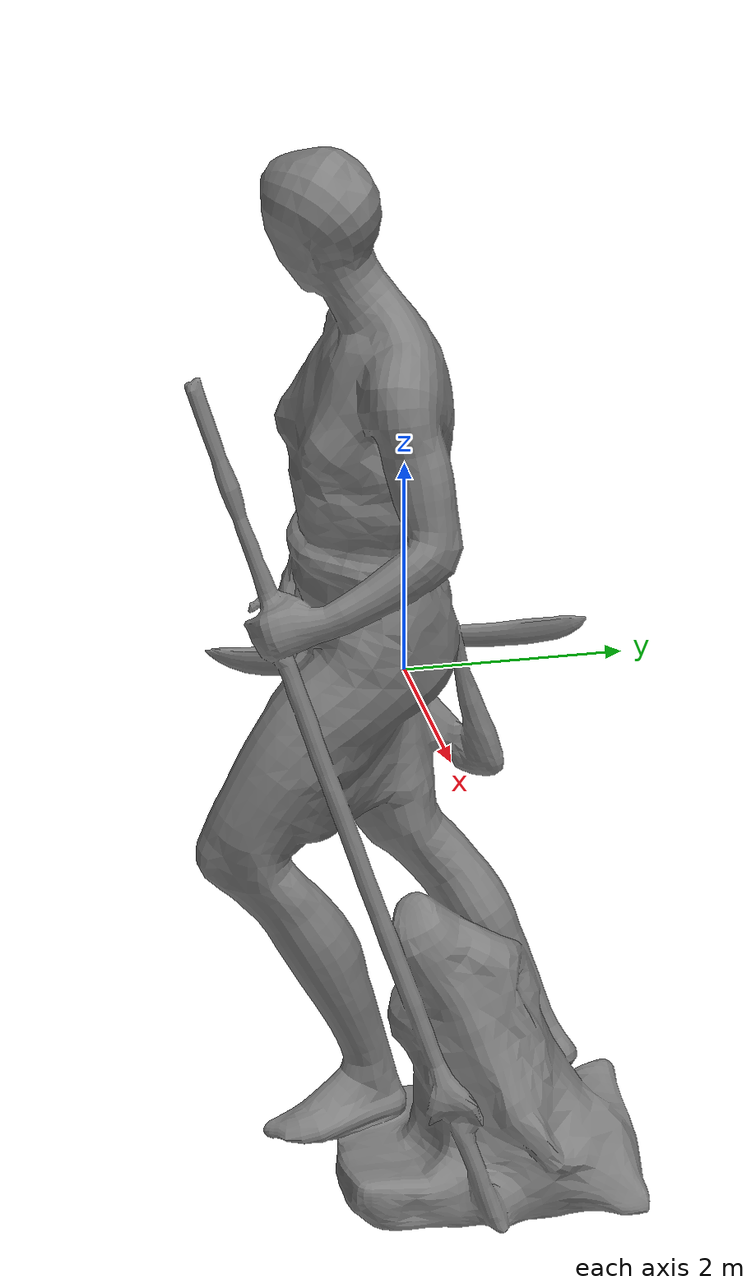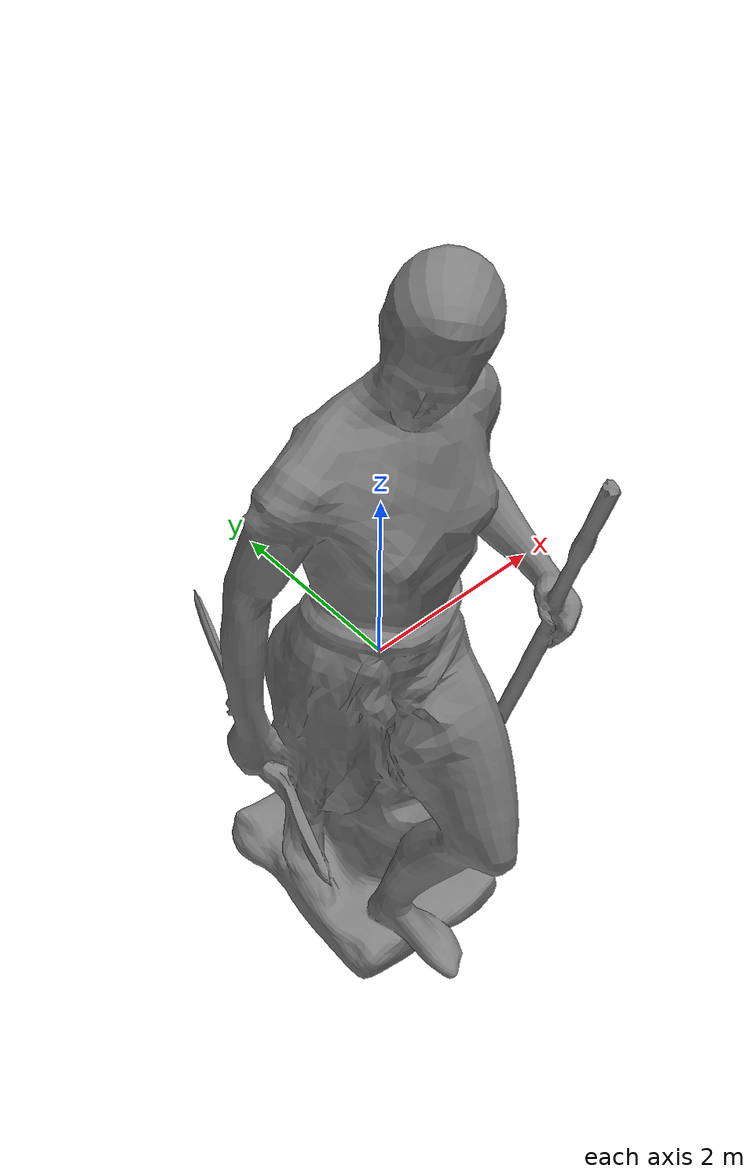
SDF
<?xml version='1.0'?>

<sdf version="1.6">
  <model name="amazone">
    <static>true</static>
    <link name="amazone_link">
      <visual name="amazone_visual">
        <geometry>
          <mesh>
            <uri>model://amazone/meshes/amazone.dae</uri>
            <scale>0.005 0.005 0.005</scale>
          </mesh>
        </geometry>
        <material>
          <ambient>0.5 0.5 0.5 1</ambient>
          <diffuse>0.5 0.5 0.5 1</diffuse>
          <specular>0.1 0.1 0.1 1</specular>
        </material>
      </visual>
      <collision name="amazone_collision">
        <geometry>
          <box>
            <size>5 5 0.5</size>
          </box>
        </geometry>
      </collision>
      <inertial>
        <mass>100.0</mass>
        <inertia>
            <ixx>0.0</ixx>
            <ixy>0.0</ixy>
            <ixz>0.0</ixz>
            <iyy>0.0</iyy>
            <iyz>0.0</iyz>
            <izz>0.0</izz>
        </inertia>
    </inertial>
    </link>
  </model>
</sdf>
